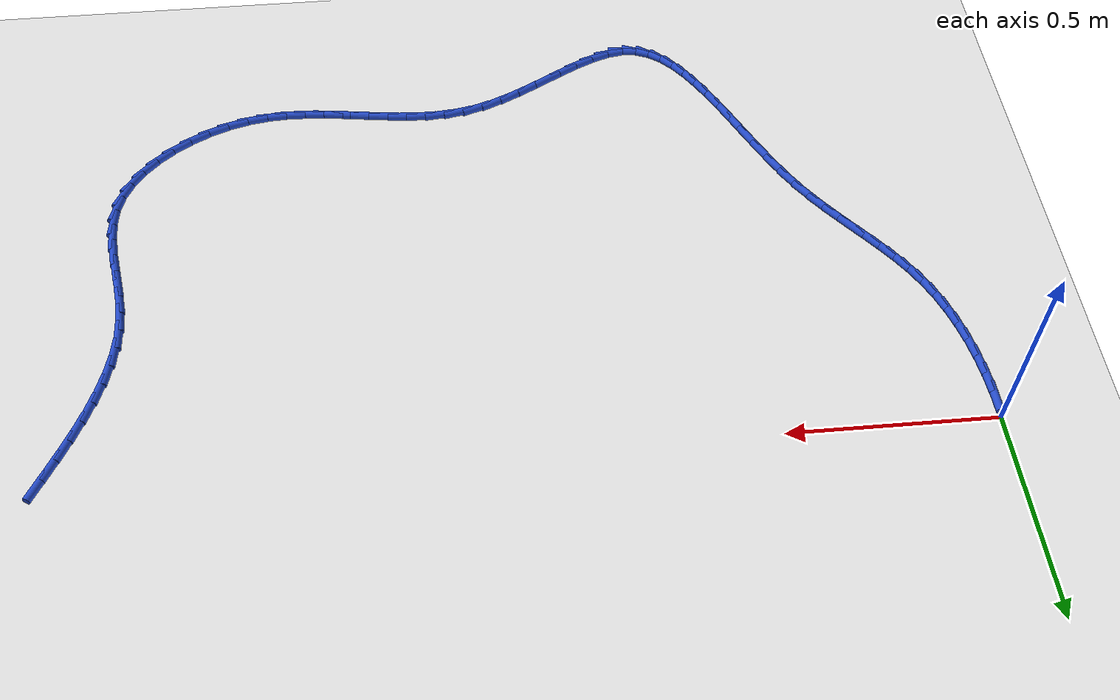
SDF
<sdf version="1.6">
 <world name="default">
  <model name="ground_plane">
   <static>1</static>
   <link name="link">
    <collision name="collision">
     <geometry><plane><normal>0 0 1</normal><size>100 100</size></plane></geometry>
     <surface><friction><ode><mu>100</mu><mu2>50</mu2></ode></friction></surface>
    </collision>
    <visual name="visual">
     <cast_shadows>0</cast_shadows>
     <geometry><plane><normal>0 0 1</normal><size>100 100</size></plane></geometry>
     <material>
      <script><uri>file://media/materials/scripts/gazebo.material</uri><name>Gazebo/WhiteGlow</name></script>
     </material>
    </visual>
   </link>
  </model>
  <model name="line">
   <link name="link_74">
    <pose>2.167369015922641 -0.005831099283206118 0.01 0 1.57 1.084862208632373</pose>
    <collision name="collision">
     <geometry><cylinder><radius>0.01</radius><length>0.08</length></cylinder></geometry>
    </collision>
    <visual name="visual">
     <material>
      <script><name>Gazebo/Blue</name><uri>file://media/materials/scripts/gazebo.material</uri></script>
     </material>
     <geometry><cylinder><radius>0.01</radius><length>0.08</length></cylinder></geometry>
    </visual>
   </link>
   <link name="link_75">
    <pose>2.1416294199584582 -0.05456401751700535 0.01 0 1.57 1.1009412950378603</pose>
    <collision name="collision">
     <geometry><cylinder><radius>0.01</radius><length>0.08</length></cylinder></geometry>
    </collision>
    <visual name="visual">
     <material>
      <script><name>Gazebo/Blue</name><uri>file://media/materials/scripts/gazebo.material</uri></script>
     </material>
     <geometry><cylinder><radius>0.01</radius><length>0.08</length></cylinder></geometry>
    </visual>
   </link>
   <link name="link_76">
    <pose>2.116690135910868 -0.10367802430600577 0.01 0 1.57 1.1282197298183965</pose>
    <collision name="collision">
     <geometry><cylinder><radius>0.01</radius><length>0.08</length></cylinder></geometry>
    </collision>
    <visual name="visual">
     <material>
      <script><name>Gazebo/Blue</name><uri>file://media/materials/scripts/gazebo.material</uri></script>
     </material>
     <geometry><cylinder><radius>0.01</radius><length>0.08</length></cylinder></geometry>
    </visual>
   </link>
   <link name="link_77">
    <pose>2.093240223920596 -0.15315750909223236 0.01 0 1.57 1.1673288482719377</pose>
    <collision name="collision">
     <geometry><cylinder><radius>0.01</radius><length>0.08</length></cylinder></geometry>
    </collision>
    <visual name="visual">
     <material>
      <script><name>Gazebo/Blue</name><uri>file://media/materials/scripts/gazebo.material</uri></script>
     </material>
     <geometry><cylinder><radius>0.01</radius><length>0.08</length></cylinder></geometry>
    </visual>
   </link>
   <link name="link_78">
    <pose>2.0719687441283696 -0.2029868613177095 0.01 0 1.57 1.2191641529187107</pose>
    <collision name="collision">
     <geometry><cylinder><radius>0.01</radius><length>0.08</length></cylinder></geometry>
    </collision>
    <visual name="visual">
     <material>
      <script><name>Gazebo/Blue</name><uri>file://media/materials/scripts/gazebo.material</uri></script>
     </material>
     <geometry><cylinder><radius>0.01</radius><length>0.08</length></cylinder></geometry>
    </visual>
   </link>
   <link name="link_79">
    <pose>2.0535647566749136 -0.25315047042446437 0.01 0 1.57 1.284750121464308</pose>
    <collision name="collision">
     <geometry><cylinder><radius>0.01</radius><length>0.08</length></cylinder></geometry>
    </collision>
    <visual name="visual">
     <material>
      <script><name>Gazebo/Blue</name><uri>file://media/materials/scripts/gazebo.material</uri></script>
     </material>
     <geometry><cylinder><radius>0.01</radius><length>0.08</length></cylinder></geometry>
    </visual>
   </link>
   <link name="link_80">
    <pose>2.038717321700954 -0.3036327258545206 0.01 0 1.57 1.3649942245469102</pose>
    <collision name="collision">
     <geometry><cylinder><radius>0.01</radius><length>0.08</length></cylinder></geometry>
    </collision>
    <visual name="visual">
     <material>
      <script><name>Gazebo/Blue</name><uri>file://media/materials/scripts/gazebo.material</uri></script>
     </material>
     <geometry><cylinder><radius>0.01</radius><length>0.08</length></cylinder></geometry>
    </visual>
   </link>
   <link name="link_81">
    <pose>2.0281154993472175 -0.35441801704990517 0.01 0 1.57 1.4602860364051558</pose>
    <collision name="collision">
     <geometry><cylinder><radius>0.01</radius><length>0.08</length></cylinder></geometry>
    </collision>
    <visual name="visual">
     <material>
      <script><name>Gazebo/Blue</name><uri>file://media/materials/scripts/gazebo.material</uri></script>
     </material>
     <geometry><cylinder><radius>0.01</radius><length>0.08</length></cylinder></geometry>
    </visual>
   </link>
   <link name="link_82">
    <pose>2.0224483497544306 -0.4054907334526427 0.01 0 1.57 1.569283981961905</pose>
    <collision name="collision">
     <geometry><cylinder><radius>0.01</radius><length>0.08</length></cylinder></geometry>
    </collision>
    <visual name="visual">
     <material>
      <script><name>Gazebo/Blue</name><uri>file://media/materials/scripts/gazebo.material</uri></script>
     </material>
     <geometry><cylinder><radius>0.01</radius><length>0.08</length></cylinder></geometry>
    </visual>
   </link>
   <link name="link_83">
    <pose>2.022370703894998 -0.45683206681921423 0.01 0 1.57 -1.4733804726472475</pose>
    <collision name="collision">
     <geometry><cylinder><radius>0.01</radius><length>0.08</length></cylinder></geometry>
    </collision>
    <visual name="visual">
     <material>
      <script><name>Gazebo/Blue</name><uri>file://media/materials/scripts/gazebo.material</uri></script>
     </material>
     <geometry><cylinder><radius>0.01</radius><length>0.08</length></cylinder></geometry>
    </visual>
   </link>
   <link name="link_84">
    <pose>2.02740209296716 -0.5083171493126792 0.01 0 1.57 -1.4108314148797667</pose>
    <collision name="collision">
     <geometry><cylinder><radius>0.01</radius><length>0.08</length></cylinder></geometry>
    </collision>
    <visual name="visual">
     <material>
      <script><name>Gazebo/Blue</name><uri>file://media/materials/scripts/gazebo.material</uri></script>
     </material>
     <geometry><cylinder><radius>0.01</radius><length>0.08</length></cylinder></geometry>
    </visual>
   </link>
   <link name="link_85">
    <pose>2.035691259160511 -0.5596930541215075 0.01 0 1.57 -1.3844981650776136</pose>
    <collision name="collision">
     <geometry><cylinder><radius>0.01</radius><length>0.08</length></cylinder></geometry>
    </collision>
    <visual name="visual">
     <material>
      <script><name>Gazebo/Blue</name><uri>file://media/materials/scripts/gazebo.material</uri></script>
     </material>
     <geometry><cylinder><radius>0.01</radius><length>0.08</length></cylinder></geometry>
    </visual>
   </link>
   <link name="link_86">
    <pose>2.0453050924832916 -0.6106992078114281 0.01 0 1.57 -1.393900745999258</pose>
    <collision name="collision">
     <geometry><cylinder><radius>0.01</radius><length>0.08</length></cylinder></geometry>
    </collision>
    <visual name="visual">
     <material>
      <script><name>Gazebo/Blue</name><uri>file://media/materials/scripts/gazebo.material</uri></script>
     </material>
     <geometry><cylinder><radius>0.01</radius><length>0.08</length></cylinder></geometry>
    </visual>
   </link>
   <link name="link_87">
    <pose>2.0543104829437415 -0.6610750369481669 0.01 0 1.57 -1.4409093721786899</pose>
    <collision name="collision">
     <geometry><cylinder><radius>0.01</radius><length>0.08</length></cylinder></geometry>
    </collision>
    <visual name="visual">
     <material>
      <script><name>Gazebo/Blue</name><uri>file://media/materials/scripts/gazebo.material</uri></script>
     </material>
     <geometry><cylinder><radius>0.01</radius><length>0.08</length></cylinder></geometry>
    </visual>
   </link>
   <link name="link_88">
    <pose>2.0607743205501023 -0.71055996809745 0.01 0 1.57 -1.5296643065619482</pose>
    <collision name="collision">
     <geometry><cylinder><radius>0.01</radius><length>0.08</length></cylinder></geometry>
    </collision>
    <visual name="visual">
     <material>
      <script><name>Gazebo/Blue</name><uri>file://media/materials/scripts/gazebo.material</uri></script>
     </material>
     <geometry><cylinder><radius>0.01</radius><length>0.08</length></cylinder></geometry>
    </visual>
   </link>
   <link name="link_89">
    <pose>2.0627634953106146 -0.7588934278250065 0.01 0 1.57 1.4769030428898076</pose>
    <collision name="collision">
     <geometry><cylinder><radius>0.01</radius><length>0.08</length></cylinder></geometry>
    </collision>
    <visual name="visual">
     <material>
      <script><name>Gazebo/Blue</name><uri>file://media/materials/scripts/gazebo.material</uri></script>
     </material>
     <geometry><cylinder><radius>0.01</radius><length>0.08</length></cylinder></geometry>
    </visual>
   </link>
   <link name="link_90">
    <pose>2.058344897233518 -0.8058148426965621 0.01 0 1.57 1.2968871918256286</pose>
    <collision name="collision">
     <geometry><cylinder><radius>0.01</radius><length>0.08</length></cylinder></geometry>
    </collision>
    <visual name="visual">
     <material>
      <script><name>Gazebo/Blue</name><uri>file://media/materials/scripts/gazebo.material</uri></script>
     </material>
     <geometry><cylinder><radius>0.01</radius><length>0.08</length></cylinder></geometry>
    </visual>
   </link>
   <link name="link_91">
    <pose>2.045632502474313 -0.8510593074394628 0.01 0 1.57 1.1087478998641147</pose>
    <collision name="collision">
     <geometry><cylinder><radius>0.01</radius><length>0.08</length></cylinder></geometry>
    </collision>
    <visual name="visual">
     <material>
      <script><name>Gazebo/Blue</name><uri>file://media/materials/scripts/gazebo.material</uri></script>
     </material>
     <geometry><cylinder><radius>0.01</radius><length>0.08</length></cylinder></geometry>
    </visual>
   </link>
   <link name="link_92">
    <pose>2.0241314250913653 -0.8942339346693134 0.01 0 1.57 0.9469400682236871</pose>
    <collision name="collision">
     <geometry><cylinder><radius>0.01</radius><length>0.08</length></cylinder></geometry>
    </collision>
    <visual name="visual">
     <material>
      <script><name>Gazebo/Blue</name><uri>file://media/materials/scripts/gazebo.material</uri></script>
     </material>
     <geometry><cylinder><radius>0.01</radius><length>0.08</length></cylinder></geometry>
    </visual>
   </link>
   <link name="link_93">
    <pose>1.9949342819845532 -0.934799789679135 0.01 0 1.57 0.8085896824499194</pose>
    <collision name="collision">
     <geometry><cylinder><radius>0.01</radius><length>0.08</length></cylinder></geometry>
    </collision>
    <visual name="visual">
     <material>
      <script><name>Gazebo/Blue</name><uri>file://media/materials/scripts/gazebo.material</uri></script>
     </material>
     <geometry><cylinder><radius>0.01</radius><length>0.08</length></cylinder></geometry>
    </visual>
   </link>
   <link name="link_94">
    <pose>1.9592202639552203 -0.9722099731232834 0.01 0 1.57 0.6874759039871546</pose>
    <collision name="collision">
     <geometry><cylinder><radius>0.01</radius><length>0.08</length></cylinder></geometry>
    </collision>
    <visual name="visual">
     <material>
      <script><name>Gazebo/Blue</name><uri>file://media/materials/scripts/gazebo.material</uri></script>
     </material>
     <geometry><cylinder><radius>0.01</radius><length>0.08</length></cylinder></geometry>
    </visual>
   </link>
   <link name="link_95">
    <pose>1.918168561804713 -1.005917585656114 0.01 0 1.57 0.5774864298286427</pose>
    <collision name="collision">
     <geometry><cylinder><radius>0.01</radius><length>0.08</length></cylinder></geometry>
    </collision>
    <visual name="visual">
     <material>
      <script><name>Gazebo/Blue</name><uri>file://media/materials/scripts/gazebo.material</uri></script>
     </material>
     <geometry><cylinder><radius>0.01</radius><length>0.08</length></cylinder></geometry>
    </visual>
   </link>
   <link name="link_96">
    <pose>1.872958366334377 -1.0353757279319817 0.01 0 1.57 0.47301647033238964</pose>
    <collision name="collision">
     <geometry><cylinder><radius>0.01</radius><length>0.08</length></cylinder></geometry>
    </collision>
    <visual name="visual">
     <material>
      <script><name>Gazebo/Blue</name><uri>file://media/materials/scripts/gazebo.material</uri></script>
     </material>
     <geometry><cylinder><radius>0.01</radius><length>0.08</length></cylinder></geometry>
    </visual>
   </link>
   <link name="link_97">
    <pose>1.8247688683455556 -1.060037500605243 0.01 0 1.57 0.3687713781781043</pose>
    <collision name="collision">
     <geometry><cylinder><radius>0.01</radius><length>0.08</length></cylinder></geometry>
    </collision>
    <visual name="visual">
     <material>
      <script><name>Gazebo/Blue</name><uri>file://media/materials/scripts/gazebo.material</uri></script>
     </material>
     <geometry><cylinder><radius>0.01</radius><length>0.08</length></cylinder></geometry>
    </visual>
   </link>
   <link name="link_98">
    <pose>1.7747792586395952 -1.0793560043302521 0.01 0 1.57 0.25940436784707205</pose>
    <collision name="collision">
     <geometry><cylinder><radius>0.01</radius><length>0.08</length></cylinder></geometry>
    </collision>
    <visual name="visual">
     <material>
      <script><name>Gazebo/Blue</name><uri>file://media/materials/scripts/gazebo.material</uri></script>
     </material>
     <geometry><cylinder><radius>0.01</radius><length>0.08</length></cylinder></geometry>
    </visual>
   </link>
   <link name="link_99">
    <pose>1.7241660005476929 -1.0927879460875651 0.01 0 1.57 0.14753706810794778</pose>
    <collision name="collision">
     <geometry><cylinder><radius>0.01</radius><length>0.08</length></cylinder></geometry>
    </collision>
    <visual name="visual">
     <material>
      <script><name>Gazebo/Blue</name><uri>file://media/materials/scripts/gazebo.material</uri></script>
     </material>
     <geometry><cylinder><radius>0.01</radius><length>0.08</length></cylinder></geometry>
    </visual>
   </link>
   <link name="link_100">
    <pose>1.6737325669896808 -1.1002832096919852 0.01 0 1.57 0.04973057088802732</pose>
    <collision name="collision">
     <geometry><cylinder><radius>0.01</radius><length>0.08</length></cylinder></geometry>
    </collision>
    <visual name="visual">
     <material>
      <script><name>Gazebo/Blue</name><uri>file://media/materials/scripts/gazebo.material</uri></script>
     </material>
     <geometry><cylinder><radius>0.01</radius><length>0.08</length></cylinder></geometry>
    </visual>
   </link>
   <link name="link_101">
    <pose>1.6235336849058484 -1.1027816887832258 0.01 0 1.57 -0.028793368257468924</pose>
    <collision name="collision">
     <geometry><cylinder><radius>0.01</radius><length>0.08</length></cylinder></geometry>
    </collision>
    <visual name="visual">
     <material>
      <script><name>Gazebo/Blue</name><uri>file://media/materials/scripts/gazebo.material</uri></script>
     </material>
     <geometry><cylinder><radius>0.01</radius><length>0.08</length></cylinder></geometry>
    </visual>
   </link>
   <link name="link_102">
    <pose>1.573534557433734 -1.1013416475120998 0.01 0 1.57 -0.08647726280213816</pose>
    <collision name="collision">
     <geometry><cylinder><radius>0.01</radius><length>0.08</length></cylinder></geometry>
    </collision>
    <visual name="visual">
     <material>
      <script><name>Gazebo/Blue</name><uri>file://media/materials/scripts/gazebo.material</uri></script>
     </material>
     <geometry><cylinder><radius>0.01</radius><length>0.08</length></cylinder></geometry>
    </visual>
   </link>
   <link name="link_103">
    <pose>1.5237003877108797 -1.0970213500294217 0.01 0 1.57 -0.12295398404607723</pose>
    <collision name="collision">
     <geometry><cylinder><radius>0.01</radius><length>0.08</length></cylinder></geometry>
    </collision>
    <visual name="visual">
     <material>
      <script><name>Gazebo/Blue</name><uri>file://media/materials/scripts/gazebo.material</uri></script>
     </material>
     <geometry><cylinder><radius>0.01</radius><length>0.08</length></cylinder></geometry>
    </visual>
   </link>
   <link name="link_104">
    <pose>1.4739963788748243 -1.0908790604860037 0.01 0 1.57 -0.13832100455948326</pose>
    <collision name="collision">
     <geometry><cylinder><radius>0.01</radius><length>0.08</length></cylinder></geometry>
    </collision>
    <visual name="visual">
     <material>
      <script><name>Gazebo/Blue</name><uri>file://media/materials/scripts/gazebo.material</uri></script>
     </material>
     <geometry><cylinder><radius>0.01</radius><length>0.08</length></cylinder></geometry>
    </visual>
   </link>
   <link name="link_105">
    <pose>1.4243877340631084 -1.0839730430326608 0.01 0 1.57 -0.13265208550895727</pose>
    <collision name="collision">
     <geometry><cylinder><radius>0.01</radius><length>0.08</length></cylinder></geometry>
    </collision>
    <visual name="visual">
     <material>
      <script><name>Gazebo/Blue</name><uri>file://media/materials/scripts/gazebo.material</uri></script>
     </material>
     <geometry><cylinder><radius>0.01</radius><length>0.08</length></cylinder></geometry>
    </visual>
   </link>
   <link name="link_106">
    <pose>1.374839656413273 -1.0773615618202057 0.01 0 1.57 -0.10579167802211073</pose>
    <collision name="collision">
     <geometry><cylinder><radius>0.01</radius><length>0.08</length></cylinder></geometry>
    </collision>
    <visual name="visual">
     <material>
      <script><name>Gazebo/Blue</name><uri>file://media/materials/scripts/gazebo.material</uri></script>
     </material>
     <geometry><cylinder><radius>0.01</radius><length>0.08</length></cylinder></geometry>
    </visual>
   </link>
   <link name="link_107">
    <pose>1.3253173490628571 -1.0721028809994522 0.01 0 1.57 -0.0574279937515175</pose>
    <collision name="collision">
     <geometry><cylinder><radius>0.01</radius><length>0.08</length></cylinder></geometry>
    </collision>
    <visual name="visual">
     <material>
      <script><name>Gazebo/Blue</name><uri>file://media/materials/scripts/gazebo.material</uri></script>
     </material>
     <geometry><cylinder><radius>0.01</radius><length>0.08</length></cylinder></geometry>
    </visual>
   </link>
   <link name="link_108">
    <pose>1.275786015149401 -1.0692552647212137 0.01 0 1.57 0.012540148310642894</pose>
    <collision name="collision">
     <geometry><cylinder><radius>0.01</radius><length>0.08</length></cylinder></geometry>
    </collision>
    <visual name="visual">
     <material>
      <script><name>Gazebo/Blue</name><uri>file://media/materials/scripts/gazebo.material</uri></script>
     </material>
     <geometry><cylinder><radius>0.01</radius><length>0.08</length></cylinder></geometry>
    </visual>
   </link>
   <link name="link_109">
    <pose>1.2262108578104467 -1.0698769771363041 0.01 0 1.57 0.10333481570866569</pose>
    <collision name="collision">
     <geometry><cylinder><radius>0.01</radius><length>0.08</length></cylinder></geometry>
    </collision>
    <visual name="visual">
     <material>
      <script><name>Gazebo/Blue</name><uri>file://media/materials/scripts/gazebo.material</uri></script>
     </material>
     <geometry><cylinder><radius>0.01</radius><length>0.08</length></cylinder></geometry>
    </visual>
   </link>
   <link name="link_110">
    <pose>1.1765570801835328 -1.0750262823955372 0.01 0 1.57 0.21245240004844995</pose>
    <collision name="collision">
     <geometry><cylinder><radius>0.01</radius><length>0.08</length></cylinder></geometry>
    </collision>
    <visual name="visual">
     <material>
      <script><name>Gazebo/Blue</name><uri>file://media/materials/scripts/gazebo.material</uri></script>
     </material>
     <geometry><cylinder><radius>0.01</radius><length>0.08</length></cylinder></geometry>
    </visual>
   </link>
   <link name="link_111">
    <pose>1.1267898854061993 -1.085761444649726 0.01 0 1.57 0.3302708972181154</pose>
    <collision name="collision">
     <geometry><cylinder><radius>0.01</radius><length>0.08</length></cylinder></geometry>
    </collision>
    <visual name="visual">
     <material>
      <script><name>Gazebo/Blue</name><uri>file://media/materials/scripts/gazebo.material</uri></script>
     </material>
     <geometry><cylinder><radius>0.01</radius><length>0.08</length></cylinder></geometry>
    </visual>
   </link>
   <link name="link_112">
    <pose>1.0769089503829734 -1.102862004662175 0.01 0 1.57 0.4222942860332188</pose>
    <collision name="collision">
     <geometry><cylinder><radius>0.01</radius><length>0.08</length></cylinder></geometry>
    </collision>
    <visual name="visual">
     <material>
      <script><name>Gazebo/Blue</name><uri>file://media/materials/scripts/gazebo.material</uri></script>
     </material>
     <geometry><cylinder><radius>0.01</radius><length>0.08</length></cylinder></geometry>
    </visual>
   </link>
   <link name="link_113">
    <pose>1.02714724719333 -1.1252212915303943 0.01 0 1.57 0.4809035738382752</pose>
    <collision name="collision">
     <geometry><cylinder><radius>0.01</radius><length>0.08</length></cylinder></geometry>
    </collision>
    <visual name="visual">
     <material>
      <script><name>Gazebo/Blue</name><uri>file://media/materials/scripts/gazebo.material</uri></script>
     </material>
     <geometry><cylinder><radius>0.01</radius><length>0.08</length></cylinder></geometry>
    </visual>
   </link>
   <link name="link_114">
    <pose>0.977834457929897 -1.1509507255317108 0.01 0 1.57 0.5109511116522464</pose>
    <collision name="collision">
     <geometry><cylinder><radius>0.01</radius><length>0.08</length></cylinder></geometry>
    </collision>
    <visual name="visual">
     <material>
      <script><name>Gazebo/Blue</name><uri>file://media/materials/scripts/gazebo.material</uri></script>
     </material>
     <geometry><cylinder><radius>0.01</radius><length>0.08</length></cylinder></geometry>
    </visual>
   </link>
   <link name="link_115">
    <pose>0.9293005757511645 -1.1781592119490125 0.01 0 1.57 0.5143077883432441</pose>
    <collision name="collision">
     <geometry><cylinder><radius>0.01</radius><length>0.08</length></cylinder></geometry>
    </collision>
    <visual name="visual">
     <material>
      <script><name>Gazebo/Blue</name><uri>file://media/materials/scripts/gazebo.material</uri></script>
     </material>
     <geometry><cylinder><radius>0.01</radius><length>0.08</length></cylinder></geometry>
    </visual>
   </link>
   <link name="link_116">
    <pose>0.8818755938156269 -1.2049556560651868 0.01 0 1.57 0.48940512924862195</pose>
    <collision name="collision">
     <geometry><cylinder><radius>0.01</radius><length>0.08</length></cylinder></geometry>
    </collision>
    <visual name="visual">
     <material>
      <script><name>Gazebo/Blue</name><uri>file://media/materials/scripts/gazebo.material</uri></script>
     </material>
     <geometry><cylinder><radius>0.01</radius><length>0.08</length></cylinder></geometry>
    </visual>
   </link>
   <link name="link_117">
    <pose>0.8358895052817771 -1.2294489631631211 0.01 0 1.57 0.4303762029966316</pose>
    <collision name="collision">
     <geometry><cylinder><radius>0.01</radius><length>0.08</length></cylinder></geometry>
    </collision>
    <visual name="visual">
     <material>
      <script><name>Gazebo/Blue</name><uri>file://media/materials/scripts/gazebo.material</uri></script>
     </material>
     <geometry><cylinder><radius>0.01</radius><length>0.08</length></cylinder></geometry>
    </visual>
   </link>
   <link name="link_118">
    <pose>0.791672303308107 -1.2497480385257045 0.01 0 1.57 0.3254706002165126</pose>
    <collision name="collision">
     <geometry><cylinder><radius>0.01</radius><length>0.08</length></cylinder></geometry>
    </collision>
    <visual name="visual">
     <material>
      <script><name>Gazebo/Blue</name><uri>file://media/materials/scripts/gazebo.material</uri></script>
     </material>
     <geometry><cylinder><radius>0.01</radius><length>0.08</length></cylinder></geometry>
    </visual>
   </link>
   <link name="link_119">
    <pose>0.7495539810531106 -1.263961787435823 0.01 0 1.57 0.1558783875539373</pose>
    <collision name="collision">
     <geometry><cylinder><radius>0.01</radius><length>0.08</length></cylinder></geometry>
    </collision>
    <visual name="visual">
     <material>
      <script><name>Gazebo/Blue</name><uri>file://media/materials/scripts/gazebo.material</uri></script>
     </material>
     <geometry><cylinder><radius>0.01</radius><length>0.08</length></cylinder></geometry>
    </visual>
   </link>
   <link name="link_120">
    <pose>0.7098645316752795 -1.2701991151763656 0.01 0 1.57 -0.09600888489474975</pose>
    <collision name="collision">
     <geometry><cylinder><radius>0.01</radius><length>0.08</length></cylinder></geometry>
    </collision>
    <visual name="visual">
     <material>
      <script><name>Gazebo/Blue</name><uri>file://media/materials/scripts/gazebo.material</uri></script>
     </material>
     <geometry><cylinder><radius>0.01</radius><length>0.08</length></cylinder></geometry>
    </visual>
   </link>
   <link name="link_121">
    <pose>0.6729175843192167 -1.2666409405002301 0.01 0 1.57 -0.3801388260946256</pose>
    <collision name="collision">
     <geometry><cylinder><radius>0.01</radius><length>0.08</length></cylinder></geometry>
    </collision>
    <visual name="visual">
     <material>
      <script><name>Gazebo/Blue</name><uri>file://media/materials/scripts/gazebo.material</uri></script>
     </material>
     <geometry><cylinder><radius>0.01</radius><length>0.08</length></cylinder></geometry>
    </visual>
   </link>
   <link name="link_122">
    <pose>0.638687022491966 -1.2529633081389022 0.01 0 1.57 -0.6192632856907673</pose>
    <collision name="collision">
     <geometry><cylinder><radius>0.01</radius><length>0.08</length></cylinder></geometry>
    </collision>
    <visual name="visual">
     <material>
      <script><name>Gazebo/Blue</name><uri>file://media/materials/scripts/gazebo.material</uri></script>
     </material>
     <geometry><cylinder><radius>0.01</radius><length>0.08</length></cylinder></geometry>
    </visual>
   </link>
   <link name="link_123">
    <pose>0.6068261663755021 -1.2302529727848075 0.01 0 1.57 -0.7978176838392729</pose>
    <collision name="collision">
     <geometry><cylinder><radius>0.01</radius><length>0.08</length></cylinder></geometry>
    </collision>
    <visual name="visual">
     <material>
      <script><name>Gazebo/Blue</name><uri>file://media/materials/scripts/gazebo.material</uri></script>
     </material>
     <geometry><cylinder><radius>0.01</radius><length>0.08</length></cylinder></geometry>
    </visual>
   </link>
   <link name="link_124">
    <pose>0.5769758126629978 -1.1996518015185365 0.01 0 1.57 -0.9241080261388441</pose>
    <collision name="collision">
     <geometry><cylinder><radius>0.01</radius><length>0.08</length></cylinder></geometry>
    </collision>
    <visual name="visual">
     <material>
      <script><name>Gazebo/Blue</name><uri>file://media/materials/scripts/gazebo.material</uri></script>
     </material>
     <geometry><cylinder><radius>0.01</radius><length>0.08</length></cylinder></geometry>
    </visual>
   </link>
   <link name="link_125">
    <pose>0.5487767580476249 -1.1623016614206787 0.01 0 1.57 -1.0112152708746358</pose>
    <collision name="collision">
     <geometry><cylinder><radius>0.01</radius><length>0.08</length></cylinder></geometry>
    </collision>
    <visual name="visual">
     <material>
      <script><name>Gazebo/Blue</name><uri>file://media/materials/scripts/gazebo.material</uri></script>
     </material>
     <geometry><cylinder><radius>0.01</radius><length>0.08</length></cylinder></geometry>
    </visual>
   </link>
   <link name="link_126">
    <pose>0.5218697992225545 -1.1193444195718227 0.01 0 1.57 -1.0697080789026143</pose>
    <collision name="collision">
     <geometry><cylinder><radius>0.01</radius><length>0.08</length></cylinder></geometry>
    </collision>
    <visual name="visual">
     <material>
      <script><name>Gazebo/Blue</name><uri>file://media/materials/scripts/gazebo.material</uri></script>
     </material>
     <geometry><cylinder><radius>0.01</radius><length>0.08</length></cylinder></geometry>
    </visual>
   </link>
   <link name="link_127">
    <pose>0.49589573288095873 -1.0719219430525595 0.01 0 1.57 -1.1067159861081166</pose>
    <collision name="collision">
     <geometry><cylinder><radius>0.01</radius><length>0.08</length></cylinder></geometry>
    </collision>
    <visual name="visual">
     <material>
      <script><name>Gazebo/Blue</name><uri>file://media/materials/scripts/gazebo.material</uri></script>
     </material>
     <geometry><cylinder><radius>0.01</radius><length>0.08</length></cylinder></geometry>
    </visual>
   </link>
   <link name="link_128">
    <pose>0.4704953557160087 -1.0211760989434768 0.01 0 1.57 -1.126648311778403</pose>
    <collision name="collision">
     <geometry><cylinder><radius>0.01</radius><length>0.08</length></cylinder></geometry>
    </collision>
    <visual name="visual">
     <material>
      <script><name>Gazebo/Blue</name><uri>file://media/materials/scripts/gazebo.material</uri></script>
     </material>
     <geometry><cylinder><radius>0.01</radius><length>0.08</length></cylinder></geometry>
    </visual>
   </link>
   <link name="link_129">
    <pose>0.4453094644208764 -0.968248754325165 0.01 0 1.57 -1.1319496300570657</pose>
    <collision name="collision">
     <geometry><cylinder><radius>0.01</radius><length>0.08</length></cylinder></geometry>
    </collision>
    <visual name="visual">
     <material>
      <script><name>Gazebo/Blue</name><uri>file://media/materials/scripts/gazebo.material</uri></script>
     </material>
     <geometry><cylinder><radius>0.01</radius><length>0.08</length></cylinder></geometry>
    </visual>
   </link>
   <link name="link_130">
    <pose>0.4199788556887341 -0.9142817762782148 0.01 0 1.57 -1.1235864359082348</pose>
    <collision name="collision">
     <geometry><cylinder><radius>0.01</radius><length>0.08</length></cylinder></geometry>
    </collision>
    <visual name="visual">
     <material>
      <script><name>Gazebo/Blue</name><uri>file://media/materials/scripts/gazebo.material</uri></script>
     </material>
     <geometry><cylinder><radius>0.01</radius><length>0.08</length></cylinder></geometry>
    </visual>
   </link>
   <link name="link_131">
    <pose>0.3941443262127526 -0.8604170318832135 0.01 0 1.57 -1.101277407289835</pose>
    <collision name="collision">
     <geometry><cylinder><radius>0.01</radius><length>0.08</length></cylinder></geometry>
    </collision>
    <visual name="visual">
     <material>
      <script><name>Gazebo/Blue</name><uri>file://media/materials/scripts/gazebo.material</uri></script>
     </material>
     <geometry><cylinder><radius>0.01</radius><length>0.08</length></cylinder></geometry>
    </visual>
   </link>
   <link name="link_132">
    <pose>0.3674466726861044 -0.8077963882207527 0.01 0 1.57 -1.0635179228706724</pose>
    <collision name="collision">
     <geometry><cylinder><radius>0.01</radius><length>0.08</length></cylinder></geometry>
    </collision>
    <visual name="visual">
     <material>
      <script><name>Gazebo/Blue</name><uri>file://media/materials/scripts/gazebo.material</uri></script>
     </material>
     <geometry><cylinder><radius>0.01</radius><length>0.08</length></cylinder></geometry>
    </visual>
   </link>
   <link name="link_133">
    <pose>0.3395266918019604 -0.7575617123714201 0.01 0 1.57 -1.0093326497865969</pose>
    <collision name="collision">
     <geometry><cylinder><radius>0.01</radius><length>0.08</length></cylinder></geometry>
    </collision>
    <visual name="visual">
     <material>
      <script><name>Gazebo/Blue</name><uri>file://media/materials/scripts/gazebo.material</uri></script>
     </material>
     <geometry><cylinder><radius>0.01</radius><length>0.08</length></cylinder></geometry>
    </visual>
   </link>
   <link name="link_134">
    <pose>0.31007985570727387 -0.7107456787092264 0.01 0 1.57 -0.9558985640685747</pose>
    <collision name="collision">
     <geometry><cylinder><radius>0.01</radius><length>0.08</length></cylinder></geometry>
    </collision>
    <visual name="visual">
     <material>
      <script><name>Gazebo/Blue</name><uri>file://media/materials/scripts/gazebo.material</uri></script>
     </material>
     <geometry><cylinder><radius>0.01</radius><length>0.08</length></cylinder></geometry>
    </visual>
   </link>
   <link name="link_135">
    <pose>0.27936535712820976 -0.6672551515500732 0.01 0 1.57 -0.9164449482299306</pose>
    <collision name="collision">
     <geometry><cylinder><radius>0.01</radius><length>0.08</length></cylinder></geometry>
    </collision>
    <visual name="visual">
     <material>
      <script><name>Gazebo/Blue</name><uri>file://media/materials/scripts/gazebo.material</uri></script>
     </material>
     <geometry><cylinder><radius>0.01</radius><length>0.08</length></cylinder></geometry>
    </visual>
   </link>
   <link name="link_136">
    <pose>0.2479746228207557 -0.626333488454535 0.01 0 1.57 -0.8933044977551476</pose>
    <collision name="collision">
     <geometry><cylinder><radius>0.01</radius><length>0.08</length></cylinder></geometry>
    </collision>
    <visual name="visual">
     <material>
      <script><name>Gazebo/Blue</name><uri>file://media/materials/scripts/gazebo.material</uri></script>
     </material>
     <geometry><cylinder><radius>0.01</radius><length>0.08</length></cylinder></geometry>
    </visual>
   </link>
   <link name="link_137">
    <pose>0.2165033608084127 -0.5872154968358205 0.01 0 1.57 -0.8882191795597346</pose>
    <collision name="collision">
     <geometry><cylinder><radius>0.01</radius><length>0.08</length></cylinder></geometry>
    </collision>
    <visual name="visual">
     <material>
      <script><name>Gazebo/Blue</name><uri>file://media/materials/scripts/gazebo.material</uri></script>
     </material>
     <geometry><cylinder><radius>0.01</radius><length>0.08</length></cylinder></geometry>
    </visual>
   </link>
   <link name="link_138">
    <pose>0.1855472791146821 -0.5491359841071386 0.01 0 1.57 -0.9025366873931</pose>
    <collision name="collision">
     <geometry><cylinder><radius>0.01</radius><length>0.08</length></cylinder></geometry>
    </collision>
    <visual name="visual">
     <material>
      <script><name>Gazebo/Blue</name><uri>file://media/materials/scripts/gazebo.material</uri></script>
     </material>
     <geometry><cylinder><radius>0.01</radius><length>0.08</length></cylinder></geometry>
    </visual>
   </link>
   <link name="link_139">
    <pose>0.15570208576306335 -0.5113297576816959 0.01 0 1.57 -0.9371430824187229</pose>
    <collision name="collision">
     <geometry><cylinder><radius>0.01</radius><length>0.08</length></cylinder></geometry>
    </collision>
    <visual name="visual">
     <material>
      <script><name>Gazebo/Blue</name><uri>file://media/materials/scripts/gazebo.material</uri></script>
     </material>
     <geometry><cylinder><radius>0.01</radius><length>0.08</length></cylinder></geometry>
    </visual>
   </link>
   <link name="link_140">
    <pose>0.12756348877705823 -0.47303162497270207 0.01 0 1.57 -0.9921958269624778</pose>
    <collision name="collision">
     <geometry><cylinder><radius>0.01</radius><length>0.08</length></cylinder></geometry>
    </collision>
    <visual name="visual">
     <material>
      <script><name>Gazebo/Blue</name><uri>file://media/materials/scripts/gazebo.material</uri></script>
     </material>
     <geometry><cylinder><radius>0.01</radius><length>0.08</length></cylinder></geometry>
    </visual>
   </link>
   <link name="link_141">
    <pose>0.10172719618016632 -0.43347639339336363 0.01 0 1.57 -1.0664738439121373</pose>
    <collision name="collision">
     <geometry><cylinder><radius>0.01</radius><length>0.08</length></cylinder></geometry>
    </collision>
    <visual name="visual">
     <material>
      <script><name>Gazebo/Blue</name><uri>file://media/materials/scripts/gazebo.material</uri></script>
     </material>
     <geometry><cylinder><radius>0.01</radius><length>0.08</length></cylinder></geometry>
    </visual>
   </link>
   <link name="link_142">
    <pose>0.07878367217213782 -0.39190664041442097 0.01 0 1.57 -1.1484623195856714</pose>
    <collision name="collision">
     <geometry><cylinder><radius>0.01</radius><length>0.08</length></cylinder></geometry>
    </collision>
    <visual name="visual">
     <material>
      <script><name>Gazebo/Blue</name><uri>file://media/materials/scripts/gazebo.material</uri></script>
     </material>
     <geometry><cylinder><radius>0.01</radius><length>0.08</length></cylinder></geometry>
    </visual>
   </link>
   <link name="link_143">
    <pose>0.05904379236685642 -0.34797922505008444 0.01 0 1.57 -1.2238072086938188</pose>
    <collision name="collision">
     <geometry><cylinder><radius>0.01</radius><length>0.08</length></cylinder></geometry>
    </collision>
    <visual name="visual">
     <material>
      <script><name>Gazebo/Blue</name><uri>file://media/materials/scripts/gazebo.material</uri></script>
     </material>
     <geometry><cylinder><radius>0.01</radius><length>0.08</length></cylinder></geometry>
    </visual>
   </link>
   <link name="link_144">
    <pose>0.042404100656134404 -0.30196494405739444 0.01 0 1.57 -1.292016150835436</pose>
    <collision name="collision">
     <geometry><cylinder><radius>0.01</radius><length>0.08</length></cylinder></geometry>
    </collision>
    <visual name="visual">
     <material>
      <script><name>Gazebo/Blue</name><uri>file://media/materials/scripts/gazebo.material</uri></script>
     </material>
     <geometry><cylinder><radius>0.01</radius><length>0.08</length></cylinder></geometry>
    </visual>
   </link>
   <link name="link_145">
    <pose>0.028727634533230198 -0.2541842424380338 0.01 0 1.57 -1.3538520559069205</pose>
    <collision name="collision">
     <geometry><cylinder><radius>0.01</radius><length>0.08</length></cylinder></geometry>
    </collision>
    <visual name="visual">
     <material>
      <script><name>Gazebo/Blue</name><uri>file://media/materials/scripts/gazebo.material</uri></script>
     </material>
     <geometry><cylinder><radius>0.01</radius><length>0.08</length></cylinder></geometry>
    </visual>
   </link>
   <link name="link_146">
    <pose>0.01787743149140131 -0.20495756519368227 0.01 0 1.57 -1.4101171929421932</pose>
    <collision name="collision">
     <geometry><cylinder><radius>0.01</radius><length>0.08</length></cylinder></geometry>
    </collision>
    <visual name="visual">
     <material>
      <script><name>Gazebo/Blue</name><uri>file://media/materials/scripts/gazebo.material</uri></script>
     </material>
     <geometry><cylinder><radius>0.01</radius><length>0.08</length></cylinder></geometry>
    </visual>
   </link>
   <link name="link_147">
    <pose>0.009716529023905907 -0.15460535732602165 0.01 0 1.57 -1.4615987152263072</pose>
    <collision name="collision">
     <geometry><cylinder><radius>0.01</radius><length>0.08</length></cylinder></geometry>
    </collision>
    <visual name="visual">
     <material>
      <script><name>Gazebo/Blue</name><uri>file://media/materials/scripts/gazebo.material</uri></script>
     </material>
     <geometry><cylinder><radius>0.01</radius><length>0.08</length></cylinder></geometry>
    </visual>
   </link>
   <link name="link_148">
    <pose>0.0041079646240020015 -0.10344806383673419 0.01 0 1.57 -1.5090416957313122</pose>
    <collision name="collision">
     <geometry><cylinder><radius>0.01</radius><length>0.08</length></cylinder></geometry>
    </collision>
    <visual name="visual">
     <material>
      <script><name>Gazebo/Blue</name><uri>file://media/materials/scripts/gazebo.material</uri></script>
     </material>
     <geometry><cylinder><radius>0.01</radius><length>0.08</length></cylinder></geometry>
    </visual>
   </link>
   <link name="link_149">
    <pose>0.0009147757849473411 -0.05180612972749939 0.01 0 1.57 -1.5531404869583034</pose>
    <collision name="collision">
     <geometry><cylinder><radius>0.01</radius><length>0.08</length></cylinder></geometry>
    </collision>
    <visual name="visual">
     <material>
      <script><name>Gazebo/Blue</name><uri>file://media/materials/scripts/gazebo.material</uri></script>
     </material>
     <geometry><cylinder><radius>0.01</radius><length>0.08</length></cylinder></geometry>
    </visual>
   </link>
  </model>
 </world>
</sdf>
